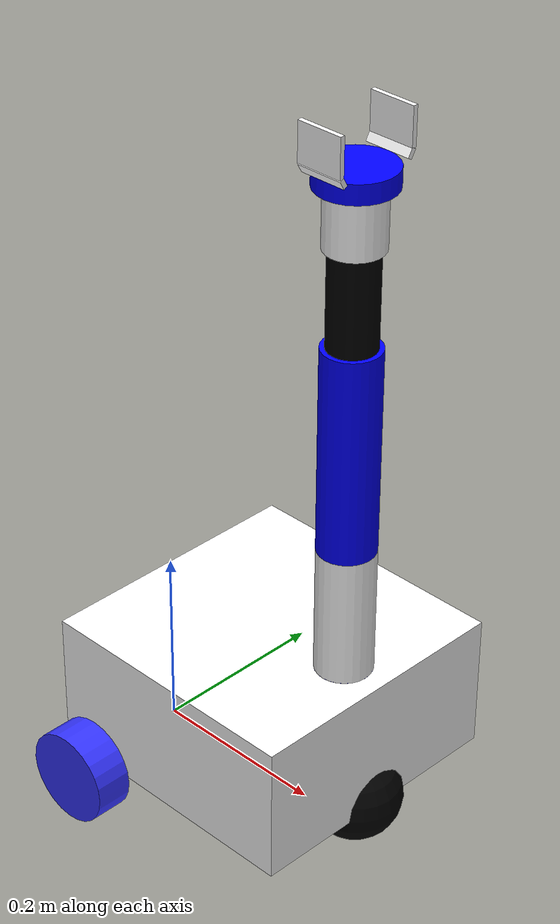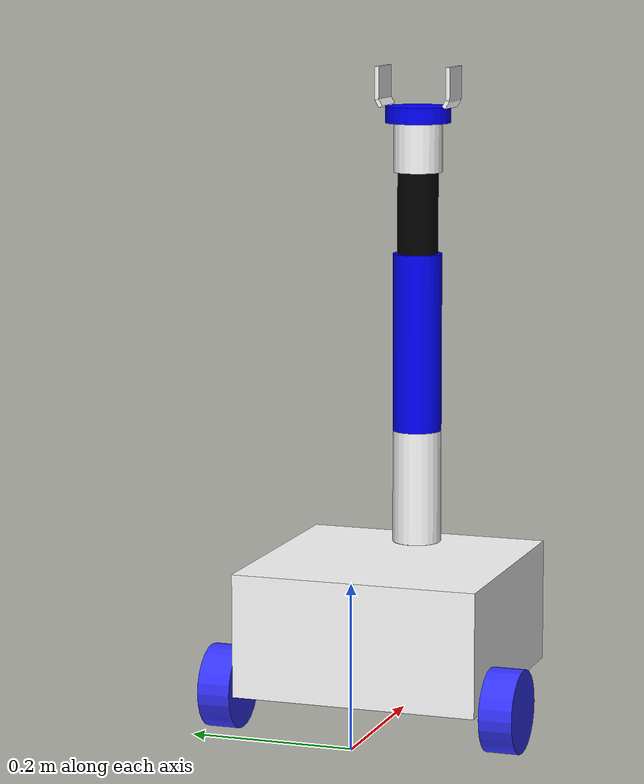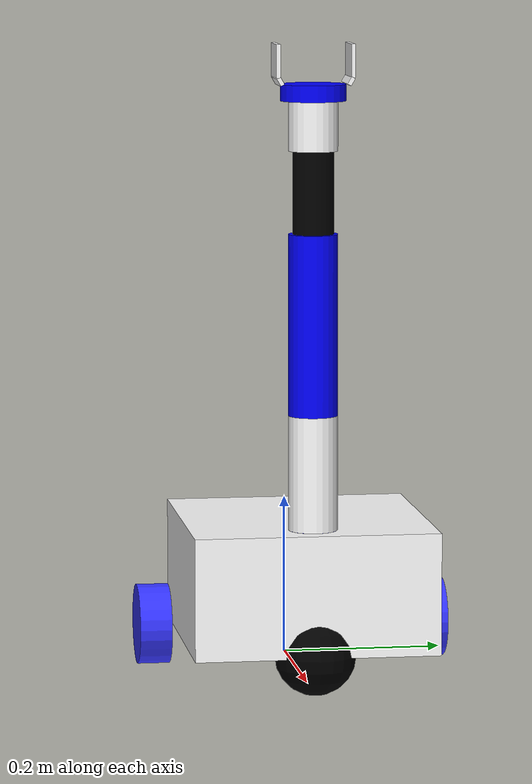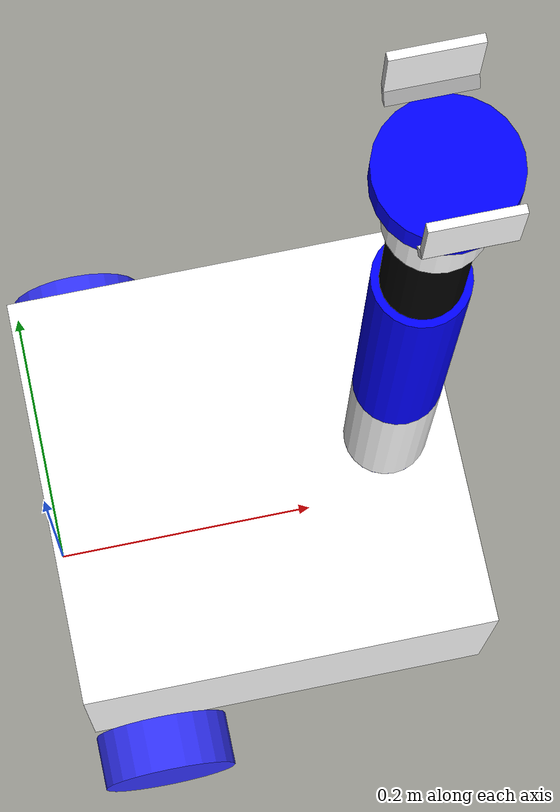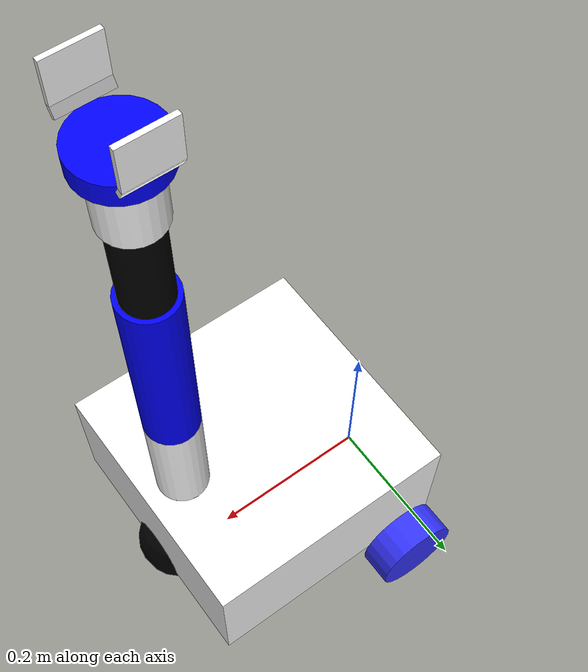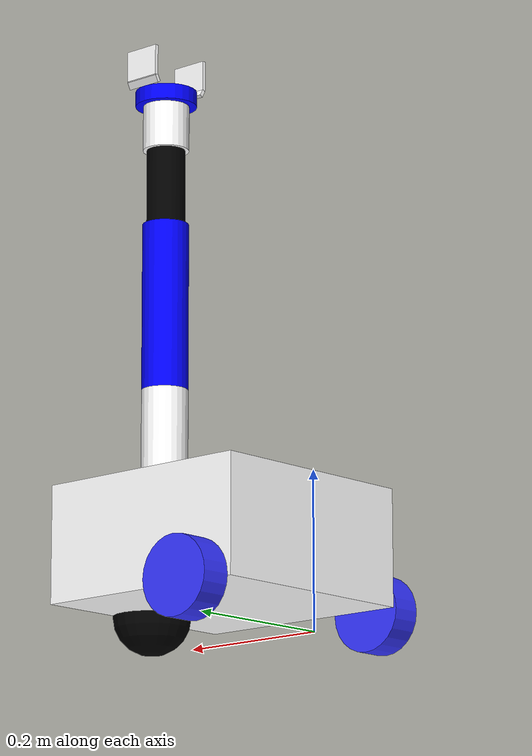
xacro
<?xml version="1.0" encoding="utf-8"?>
<robot xmlns:xacro="http://www.ros.org/wiki/xacro" name="bbot_robot">

  <xacro:include filename="bbot_description.xacro" />
  <xacro:include filename="bbot.ros2_control.xacro" />
  <xacro:control_arm />
  <xacro:control_base/>
  <xacro:control_arm_soft/>

</robot>

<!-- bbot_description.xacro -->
<robot xmlns:xacro="http://www.ros.org/wiki/xacro" >
  <xacro:include filename="inertial_macros.xacro"/>
  <xacro:include filename="mbot_arm_gazebo.xacro"/>

  <material name="white">
    <color rgba="1 1 1 1"/>
  </material>

  <material name="orange">
    <color rgba="1 0.3 0.1 1"/>
  </material>

  <material name="blue">
    <color rgba="0.2 0.2 1 1"/>
  </material>

  <material name="black">
    <color rgba="0 0 0 1"/>
  </material>

  <!-- BASE LINK  -->
  <link name="base_link">

  </link>

  <!-- base -->
  <joint name="base_joint" type="fixed">
    <parent link="base_link"/>
    <child link="base"/>
    <origin xyz="0 0 0.05"/>
  </joint>

  <link name="base">
    <visual>
      <origin xyz="0.15 0 0.075"/>
      <geometry>
        <box size="0.3 0.3 0.15"/>
      </geometry>
      <material name="white"/>
    </visual>
    <collision>
      <origin xyz="0.15 0 0.075"/>
      <geometry>
        <box size="0.3 0.3 0.15"/>
      </geometry>
    </collision>
    <xacro:inertial_box mass="10.5" x="0.3" y="0.3" z="0.15">
      <origin xyz="0.15 0 0.075" rpy="0 0 0"/>
    </xacro:inertial_box>
  </link>

  <!-- left_wheel -->

  <joint name="left_wheel_joint" type="continuous">
    <parent link="base"/>
    <child link="left_wheel"/>
    <origin xyz="0.05 0.175 0" rpy="-${pi/2} 0 0"/>
    <axis xyz="0 0 1"/>
  </joint>

  <link name="left_wheel">
    <visual>
      <geometry>
        <cylinder radius="0.05" length="0.04"/>
      </geometry>
      <material name="blue"/>
    </visual>
    <collision>
      <geometry>
        <cylinder radius="0.05" length="0.04"/>
      </geometry>
    </collision>
    <xacro:inertial_cylinder mass="1.5" length="0.04" radius="0.05">
      <origin xyz="0 0 0" rpy="0 0 0"/>
    </xacro:inertial_cylinder>
  </link>

  <!-- right_wheel -->

  <joint name="right_wheel_joint" type="continuous">
    <parent link="base"/>
    <child link="right_wheel"/>
    <origin xyz="0.05 -0.175 0" rpy="${pi/2} 0 0"/>
    <axis xyz="0 0 -1"/>
  </joint>

  <link name="right_wheel">
    <visual>
      <geometry>
        <cylinder radius="0.05" length="0.04"/>
      </geometry>
      <material name="blue"/>
    </visual>
    <collision>
      <geometry>
        <cylinder radius="0.05" length="0.04"/>
      </geometry>
    </collision>
    <xacro:inertial_cylinder mass="1.5" length="0.04" radius="0.05">
      <origin xyz="0 0 0" rpy="0 0 0"/>
    </xacro:inertial_cylinder>
  </link>

  <joint name="caster_wheel_joint" type="fixed">
    <parent link="base"/>
    <child link="caster_wheel"/>
    <origin xyz="0.27 0 0"/>
  </joint>

  <link name="caster_wheel">
    <visual>
      <geometry>
        <sphere radius="0.05"/>
      </geometry>
      <material name="black"/>
    </visual>
    <collision>
      <geometry>
        <sphere radius="0.05"/>
      </geometry>
    </collision>
    <xacro:inertial_sphere mass="1.5" radius="0.05">
      <origin xyz="0 0 0" rpy="0 0 0"/>
    </xacro:inertial_sphere>
  </link>

  <gazebo reference="caster_wheel">
    <material>Gazebo/Black</material>
    <mu1 value="0.001"/>
    <mu2 value="0.001"/>
  </gazebo>

  <gazebo reference="right_wheel">
    <material>Gazebo/Black</material>
    <mu1 value="111.0"/>
    <mu2 value="111.0"/>
  </gazebo>

  <gazebo reference="left_wheel">
    <material>Gazebo/Black</material>
    <mu1 value="111.0"/>
    <mu2 value="111.0"/>
  </gazebo>

  <!-- robot_arm -->
  <xacro:robot_arm/>

</robot>

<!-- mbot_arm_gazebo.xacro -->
<robot name="arm" xmlns:xacro="http://ros.org/wiki/xacro">

    <material name="Black">
        <color rgba="0 0 0 1"/>
    </material>

    <material name="White">
        <color rgba="1 1 1 1"/>
    </material>

    <material name="Blue">
        <color rgba="0 0 1 1"/>
    </material>

    <material name="Red">
        <color rgba="1 0 0 1"/>
    </material>

    <xacro:property name="M_PI" value="3.14159"/>

    <xacro:property name="link1_width" value="0.03" />
    <xacro:property name="link1_len" value="0.0001" />

    <xacro:property name="link2_width" value="0.03" />
    <xacro:property name="link2_len" value="0.14" />

    <xacro:property name="link3_width" value="0.03" />
    <xacro:property name="link3_len" value="0.22" />

    <xacro:property name="link4_width" value="0.025" />
    <xacro:property name="link4_len" value="0.10" />

    <xacro:property name="link5_width" value="0.03" />
    <xacro:property name="link5_len" value="0.06" />

    <xacro:property name="link6_width" value="0.04" />
    <xacro:property name="link6_len" value="0.02" />

    <xacro:property name="left_gripper_len" value="0.04" />
    <xacro:property name="left_gripper_width" value="0.01" />
    <xacro:property name="left_gripper_height" value="0.01" />

    <xacro:property name="right_gripper_len" value="0.04" />
    <xacro:property name="right_gripper_width" value="0.01" />
    <xacro:property name="right_gripper_height" value="0.01" />

    <xacro:property name="sqirt_3" value="1.732"/>

    <xacro:property name="gripper_width" value="0.05"/>
    <xacro:property name="gripper_len" value="0.005"/>
    <xacro:property name="gripper_hight"   value="0.01"/>

    <xacro:property name="gripper_hight_end"   value="0.04"/>

    <xacro:property name="nail_gripper_hight" value="0.01"/>

    <xacro:property name="fixed_gripper_len" value="0.01"/>

    <xacro:macro name="gripper_define" params="number">

        <link name="gripper${number}_link">
            <visual>
                <origin xyz="0 ${gripper_hight / 4} ${gripper_hight / 4 * sqirt_3}" rpy="${-1 * M_PI / 6} 0 0"/>
                <geometry>
                    <box size="${gripper_width} ${gripper_len} ${gripper_hight}" />
                </geometry>
                <material name="White" />
            </visual>

            <collision>
                <origin xyz="0 ${gripper_hight / 4} ${gripper_hight / 4 * sqirt_3}" rpy="${-1 * M_PI / 6} ${-1 * M_PI / 2} 0"/>
                <geometry>
                    <box size="${gripper_width} ${gripper_len} ${gripper_hight}" />
                </geometry>
            </collision>

            <xacro:box_inertial_matrix m="0.2"  l="${gripper_len}" w="${gripper_width}" h="${gripper_hight}">
                <origin xyz="0 ${gripper_hight / 4} ${gripper_hight / 4 * sqirt_3}" rpy="${-1 * M_PI / 6} 0 0"/>
            </xacro:box_inertial_matrix>
        </link>

        <joint name="fixed_joint${number}" type="fixed">
            <parent link="gripper${number}_link"/>
            <child link="fixed_gripper_link${number}"/>
            <origin xyz="0 ${gripper_hight / 2} ${gripper_hight / 2 * sqirt_3}" />
        </joint>

        <link name="fixed_gripper_link${number}">
            <visual>
                <origin xyz="0 0 ${gripper_hight_end / 2}" rpy="0 0 0"/>
                <geometry>
                    <box size="${gripper_width} ${gripper_len} ${gripper_hight_end}" />
                </geometry>
                <material name="White" />
            </visual>

            <collision>
                <origin xyz="0 0 ${gripper_hight / 2}" rpy="0 0 0"/>
                <geometry>
                    <box size="${gripper_width} ${gripper_len} ${gripper_hight_end}" />
                </geometry>
            </collision>

            <xacro:box_inertial_matrix m="0.2"  l="${gripper_len}" w="${gripper_width}" h="${gripper_hight_end}">
                <origin xyz="0 0 ${gripper_hight / 2}" rpy="0 0 0"/>
            </xacro:box_inertial_matrix>
        </link>

        <gazebo reference="fixed_gripper_link${number}">
            <material>Gazebo/Gray</material>
            <mu1>111.0</mu1> <!-- 静摩擦系数 -->
            <mu2>110.5</mu2> <!-- 动摩擦系数 -->
            <surface>
                <bounce>
                <restitution_coefficient>0.99</restitution_coefficient>  <!-- 设置弹性系数 -->
                <threshold>0.03</threshold>  <!-- 速度阈值，低于此速度不会产生反弹 -->
                </bounce>
            </surface>
        </gazebo>

        <gazebo reference="gripper${number}_link">
            <material>Gazebo/Gray</material>
            <mu1>111.0</mu1> <!-- 静摩擦系数 -->
            <mu2>110.5</mu2> <!-- 动摩擦系数 -->
            <surface>
                <bounce>
                <restitution_coefficient>0.99</restitution_coefficient>  <!-- 设置弹性系数 -->
                <threshold>0.03</threshold>  <!-- 速度阈值，低于此速度不会产生反弹 -->
                </bounce>
            </surface>
        </gazebo>
    </xacro:macro>

    <xacro:property name="grasp_frame_radius" value="0.001" />

    <xacro:macro name="sphere_inertial_matrix" params="m r *origin">
        <inertial>
            <xacro:insert_block name="origin"/>
            <mass value="${m}" />
            <inertia ixx="${2*m*r*r/5}" ixy="0" ixz="0"
                iyy="${2*m*r*r/5}" iyz="0"
                izz="${2*m*r*r/5}" />
        </inertial>
    </xacro:macro>

    <xacro:macro name="cylinder_inertial_matrix" params="m r h *origin">
        <inertial>
            <xacro:insert_block name="origin"/>
            <mass value="${m}" />
            <inertia ixx="${m*(3*r*r+h*h)/12}" ixy = "0" ixz = "0"
                iyy="${m*(3*r*r+h*h)/12}" iyz = "0"
                izz="${m*r*r/2}" />
        </inertial>
    </xacro:macro>

    <xacro:macro name="box_inertial_matrix" params="m l w h *origin">
        <inertial>
            <xacro:insert_block name="origin"/>
            <mass value="${m}" />
            <inertia ixx="${m * (w * w + h * h) / 12}" ixy = "0" ixz = "0"
                iyy="${m * (l * l + h * h) / 12}" iyz = "0"
                izz="${m * (l * l + w * w) / 12}" />
        </inertial>
    </xacro:macro>

    <xacro:macro name="robot_arm">
        <joint name="joint1" type="revolute">
            <parent link="base"/>
            <child link="link1"/>
            <origin xyz="0.25 0 0.15" rpy="0 0 0" />
            <axis xyz="0 0 1" />
            <limit effort="1" velocity="1" lower="-2.96" upper="2.96"/>
            <dynamics damping="50" friction="1"/>
        </joint>

        <link name="link1" >
            <visual>
                <origin xyz="0 0 ${link1_len/2}" rpy="0 0 0" />
                <geometry>
                    <cylinder radius="${link1_width}" length="${link1_len}"/>
                </geometry>
                <material name="Blue" />
            </visual>
            <collision>
                <origin xyz="0 0 ${link1_len/2}" rpy="0 0 0" />
                <geometry>
                    <cylinder radius="${link1_width}" length="${link1_len}"/>
                </geometry>
            </collision>
            <xacro:cylinder_inertial_matrix m="1" r="${link1_width}" h="${link1_len}">
                <origin xyz="0 0 ${link1_len/2}" rpy="0 0 0" />
            </xacro:cylinder_inertial_matrix>

        </link>

        <joint name="joint2" type="revolute">
            <parent link="link1"/>
            <child link="link2"/>
            <origin xyz="0 0 ${link1_len}" rpy="0 0 0" />
            <axis xyz="1 0 0" />
            <limit effort="1" velocity="1" lower="-2.35" upper="2.35" />
            <dynamics damping="50" friction="1"/>
        </joint>

        <link name="link2" >
            <visual>
                <origin xyz="0 0 ${link2_len/2}" rpy="0 0 0" />
                <geometry>
                    <cylinder radius="${link2_width}" length="${link2_len}"/>
                </geometry>
                <material name="White" />
            </visual>

            <collision>
                <origin xyz="0 0 ${link2_len/2}" rpy="0 0 0" />
                <geometry>
                    <cylinder radius="${link2_width}" length="${link2_len}"/>
                </geometry>
            </collision>
            <xacro:cylinder_inertial_matrix m="1" r="${link2_width}" h="${link2_len}">
                <origin xyz="0 0 ${link2_len/2}" rpy="0 0 0" />
            </xacro:cylinder_inertial_matrix>
        </link>

        <joint name="joint3" type="revolute">
            <parent link="link2"/>
            <child link="link3"/>
            <origin xyz="0 0 ${link2_len}" rpy="0 0 0" />
            <axis xyz="1 0 0" />
            <limit effort="1" velocity="1" lower="-2.62" upper="2.62" />
            <dynamics damping="50" friction="1"/>
        </joint>

        <link name="link3" >
            <visual>
                <origin xyz="0 0 ${link3_len/2}" rpy="0 0 0" />
                <geometry>
                    <cylinder radius="${link3_width}" length="${link3_len}"/>
                </geometry>
                <material name="Blue" />
            </visual>
            <collision>
                <origin xyz="0 0 ${link3_len/2}" rpy="0 0 0" />
                <geometry>
                    <cylinder radius="${link3_width}" length="${link3_len}"/>
                </geometry>
            </collision>
            <xacro:cylinder_inertial_matrix m="1" r="${link3_width}" h="${link3_len}">
                <origin xyz="0 0 ${link3_len/2}" rpy="0 0 0" />
            </xacro:cylinder_inertial_matrix>
        </link>

        <joint name="joint4" type="revolute">
            <parent link="link3"/>
            <child link="link4"/>
            <origin xyz="0.0 0.0 ${link3_len}" rpy="0 0 0" />
            <axis xyz="1 0 0" />
            <limit effort="1" velocity="1" lower="-2.62" upper="2.62" />
            <dynamics damping="50" friction="1"/>
        </joint>

        <link name="link4" >
            <visual>
                <origin xyz="0 0 ${link4_len/2}" rpy="0 0 0" />
                <geometry>
                    <cylinder radius="${link4_width}" length="${link4_len}"/>
                </geometry>
                <material name="Black" />
            </visual>
            <collision>
                <origin xyz="0 0 ${link4_len/2}" rpy="0 0 0" />
                <geometry>
                    <cylinder radius="${link4_width}" length="${link4_len}"/>
                </geometry>
            </collision>
            <xacro:cylinder_inertial_matrix m="1" r="${link4_width}" h="${link4_len}">
                <origin xyz="0 0 ${link4_len/2}" rpy="0 0 0" />
            </xacro:cylinder_inertial_matrix>
        </link>

        <joint name="joint5" type="revolute">
            <parent link="link4"/>
            <child link="link5"/>
            <origin xyz="0.0 0.0 ${link4_len}" rpy="0 0 0" />
            <axis xyz="1 0 0" />
            <limit effort="1" velocity="1" lower="-2.62" upper="2.62" />
            <dynamics damping="50" friction="1"/>
        </joint>

        <link name="link5" >
            <visual>
                <origin xyz="0 0 ${link5_len/2}" rpy="0 0 0" />
                <geometry>
                    <cylinder radius="${link5_width}" length="${link5_len}"/>
                </geometry>
                <material name="White" />
            </visual>
            <collision>
                <origin xyz="0 0 ${link5_len/2}" rpy="0 0 0" />
                <geometry>
                    <cylinder radius="${link5_width}" length="${link5_len}"/>
                </geometry>
            </collision>
            <xacro:cylinder_inertial_matrix m="1" r="${link5_width}" h="${link5_len}">
                <origin xyz="0 0 ${link5_len/2}" rpy="0 0 0" />
            </xacro:cylinder_inertial_matrix>
        </link>

        <joint name="joint6" type="revolute">
            <parent link="link5"/>
            <child link="link6"/>
            <origin xyz="0 0 ${link5_len}" rpy="0 0 0" />
            <axis xyz="0 0 1" />
            <limit effort="1" velocity="1" lower="-6.28" upper="6.28" />
            <dynamics damping="50" friction="1"/>
        </joint>

        <link name="link6">
            <visual>
                <origin xyz="0 0 ${link6_len/2} " rpy="0 0 0" />
                <geometry>
                    <cylinder radius="${link6_width}" length="${link6_len}"/>
                </geometry>
                <material name="Blue" />
            </visual>
            <collision>
                <origin xyz="0 0 ${link6_len/2} " rpy="0 0 0" />
                <geometry>
                    <cylinder radius="${link6_width}" length="${link6_len}"/>
                </geometry>
            </collision>
            <xacro:cylinder_inertial_matrix m="1" r="${link6_width}" h="${link6_len}">
                <origin xyz="0 0 ${link6_len/2}" rpy="0 0 0" />
            </xacro:cylinder_inertial_matrix>
        </link>

        <joint name="gripper_joint1" type="prismatic">
            <parent link="link6"/>
            <child link="gripper1_link"/>
            <origin xyz="0 ${link6_width} ${link6_len}" rpy="0 0 0"/>
            <axis xyz="0 -1 0"/>
            <limit lower="0" upper="0.04" effort="1" velocity="0.5"/>
            <dynamics damping="50" friction="1"/>
        </joint>

        <joint name="gripper_joint2" type="prismatic">
            <parent link="link6"/>
            <child link="gripper2_link"/>
            <origin xyz="0 -${link6_width} ${link6_len}" rpy="0 0 ${M_PI}"/>
            <axis xyz="0 -1 0"/>
            <limit lower="0" upper="0.04" effort="1" velocity="0.5"/>
            <dynamics damping="50" friction="1"/>
        </joint>

        <xacro:gripper_define number="1"/>
        <xacro:gripper_define number="2"/>

        <link name="grasping_frame"/>

        <joint name="grasping_frame_joint" type="fixed">
        <parent link="link6"/>
        <child link="grasping_frame"/>
        <origin xyz="0 0 ${link6_len}" rpy="0 0 0"/>
        </joint>

        <gazebo reference="bottom_link">
            <material>Gazebo/White</material>
        </gazebo>
        <gazebo reference="base_link">
            <material>Gazebo/White</material>
        </gazebo>
        <gazebo reference="link1">
            <material>Gazebo/Blue</material>
        </gazebo>
        <gazebo reference="link2">
            <material>Gazebo/White</material>
        </gazebo>
        <gazebo reference="link3">
            <material>Gazebo/Blue</material>
        </gazebo>
        <gazebo reference="link4">
            <material>Gazebo/Black</material>
        </gazebo>
        <gazebo reference="link5">
            <material>Gazebo/White</material>
        </gazebo>
        <gazebo reference="link6">
            <material>Gazebo/Blue</material>
        </gazebo>

        <xacro:macro name="transmission_block" params="joint_name">
            <transmission name="tran1">
                <type>transmission_interface/SimpleTransmission</type>
                <joint name="${joint_name}">
                    <hardwareInterface>hardware_interface/EffortJointInterface</hardwareInterface>
                </joint>
                <actuator name="motor1">
                    <hardwareInterface>hardware_interface/EffortJointInterface</hardwareInterface>
                    <mechanicalReduction>1</mechanicalReduction>
                </actuator>
            </transmission>
        </xacro:macro>

        <xacro:transmission_block joint_name="joint1"/>
        <xacro:transmission_block joint_name="joint2"/>
        <xacro:transmission_block joint_name="joint3"/>
        <xacro:transmission_block joint_name="joint4"/>
        <xacro:transmission_block joint_name="joint5"/>
        <xacro:transmission_block joint_name="joint6"/>
        <xacro:transmission_block joint_name="gripper_joint1"/>
        <xacro:transmission_block joint_name="gripper_joint2"/>
        <xacro:transmission_block joint_name="gripper_joint3"/>

    </xacro:macro>

</robot>
